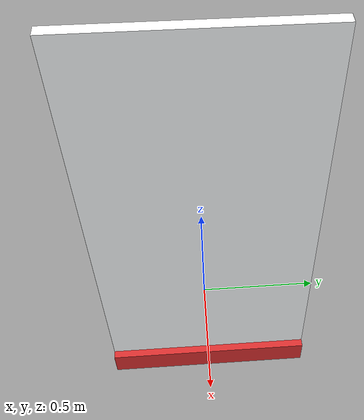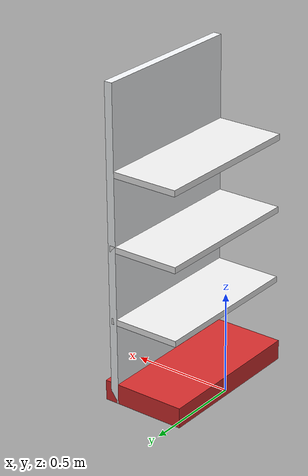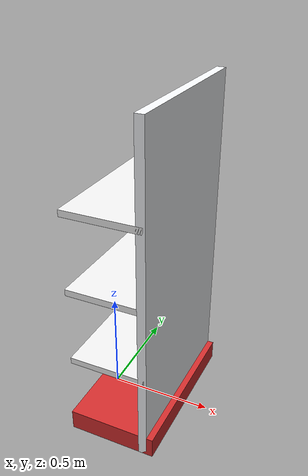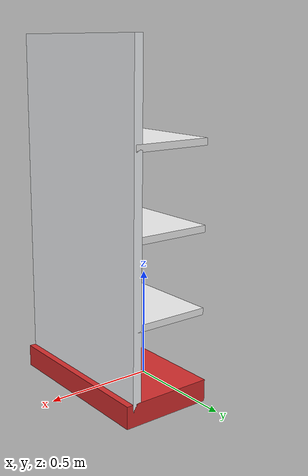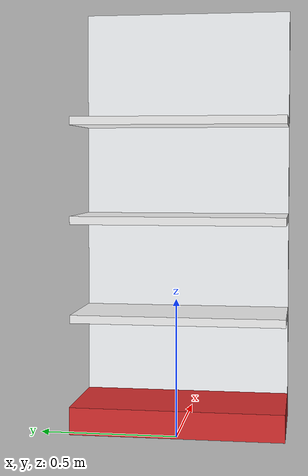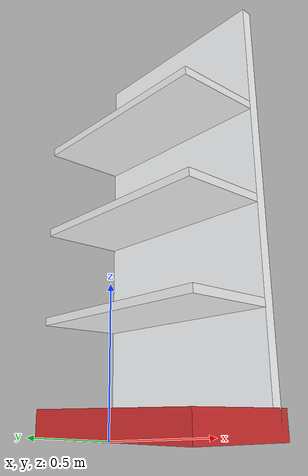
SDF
<?xml version="1.0"?>
<sdf version="1.9">
  <model name="pharmacy_endcap_display">
    <static>true</static>
    <link name="body">
      <collision name="base_collision">
        <pose>0.18 0 0.05 0 0 0</pose>
        <geometry><box><size>0.42 0.78 0.10</size></box></geometry>
      </collision>
      <collision name="back_panel_collision">
        <pose>0.34 0 0.78 0 0 0</pose>
        <geometry><box><size>0.04 0.78 1.56</size></box></geometry>
      </collision>
      <collision name="level_1_collision">
        <pose>0.17 0 0.42 0 0 0</pose>
        <geometry><box><size>0.36 0.78 0.03</size></box></geometry>
      </collision>
      <collision name="level_2_collision">
        <pose>0.17 0 0.78 0 0 0</pose>
        <geometry><box><size>0.36 0.78 0.03</size></box></geometry>
      </collision>
      <collision name="level_3_collision">
        <pose>0.17 0 1.14 0 0 0</pose>
        <geometry><box><size>0.36 0.78 0.03</size></box></geometry>
      </collision>

      <visual name="base_visual">
        <pose>0.18 0 0.05 0 0 0</pose>
        <geometry><box><size>0.42 0.78 0.10</size></box></geometry>
        <material><ambient>0.68 0.14 0.14 1</ambient><diffuse>0.84 0.18 0.18 1</diffuse></material>
      </visual>
      <visual name="back_panel_visual">
        <pose>0.34 0 0.78 0 0 0</pose>
        <geometry><box><size>0.04 0.78 1.56</size></box></geometry>
        <material><ambient>0.92 0.93 0.94 1</ambient><diffuse>0.97 0.98 0.99 1</diffuse></material>
      </visual>
      <visual name="level_1_visual">
        <pose>0.17 0 0.42 0 0 0</pose>
        <geometry><box><size>0.36 0.78 0.03</size></box></geometry>
        <material><ambient>0.85 0.85 0.85 1</ambient><diffuse>0.95 0.95 0.95 1</diffuse></material>
      </visual>
      <visual name="level_2_visual">
        <pose>0.17 0 0.78 0 0 0</pose>
        <geometry><box><size>0.36 0.78 0.03</size></box></geometry>
        <material><ambient>0.85 0.85 0.85 1</ambient><diffuse>0.95 0.95 0.95 1</diffuse></material>
      </visual>
      <visual name="level_3_visual">
        <pose>0.17 0 1.14 0 0 0</pose>
        <geometry><box><size>0.36 0.78 0.03</size></box></geometry>
        <material><ambient>0.85 0.85 0.85 1</ambient><diffuse>0.95 0.95 0.95 1</diffuse></material>
      </visual>
    </link>
  </model>
</sdf>
